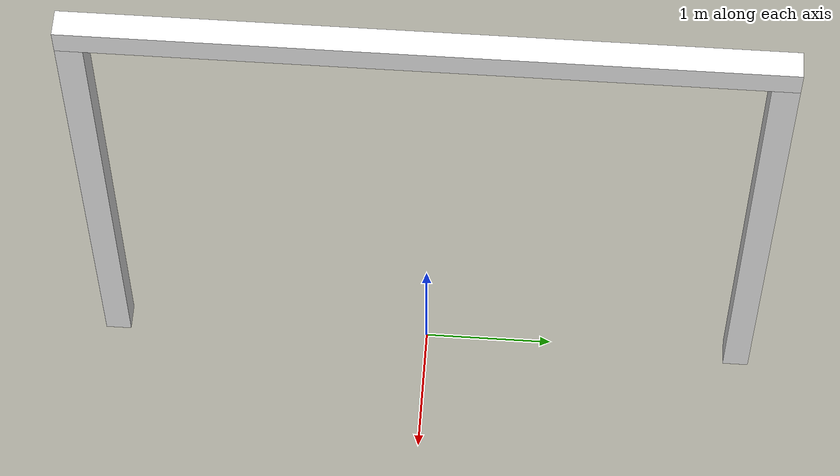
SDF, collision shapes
<?xml version="1.0"?>
<sdf version="1.4">
  <model name="gate">
    <static>true</static>
    <pose>0 0 2.0 0 0 0</pose>
    <link name="link">
      <collision name="right_collision">
        <pose>0 -2.5 0 0 0 0</pose>
        <geometry>
          <box>
            <size>0.2 0.2 4.0</size>
          </box>
        </geometry>
      </collision>

      <collision name="left_collision">
        <pose>0 2.5 0 0 0 0</pose>
        <geometry>
          <box>
            <size>0.2 0.2 4.0</size>
          </box>
        </geometry>
      </collision>

      <collision name="top_collision">
        <pose>0 0 2.1 0 0 0</pose>
        <geometry>
          <box>
            <size>0.2 5.2 0.2</size>
          </box>
        </geometry>
      </collision>

      <visual name="visual">
        <pose>0 0 -2.0 0 0 0</pose>
        <geometry>
          <mesh>
            <uri>model://gate/meshes/gate.dae</uri>
          </mesh>
        </geometry>
        <material>
          <diffuse>1.0 1.0 1.0 1.0</diffuse>
          <specular>0.1 0.1 0.1 1.0</specular>
          <pbr>
            <metal>
              <albedo_map>model://gate/materials/textures/gate.png</albedo_map>
            </metal>
          </pbr>
        </material>
      </visual>

    </link>
  </model>
</sdf>
